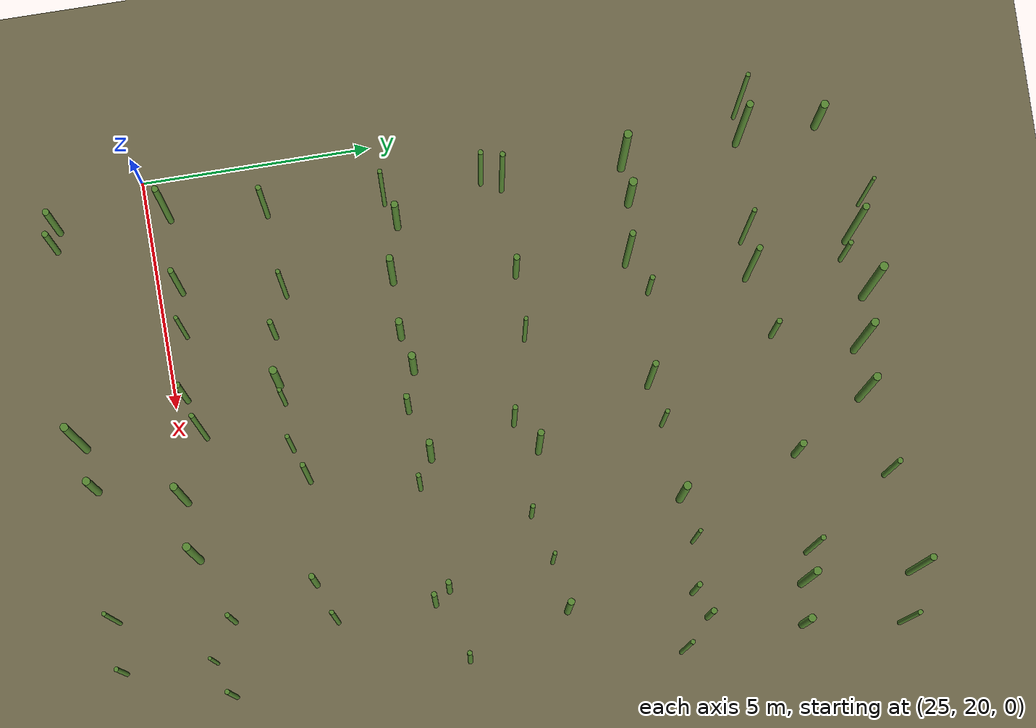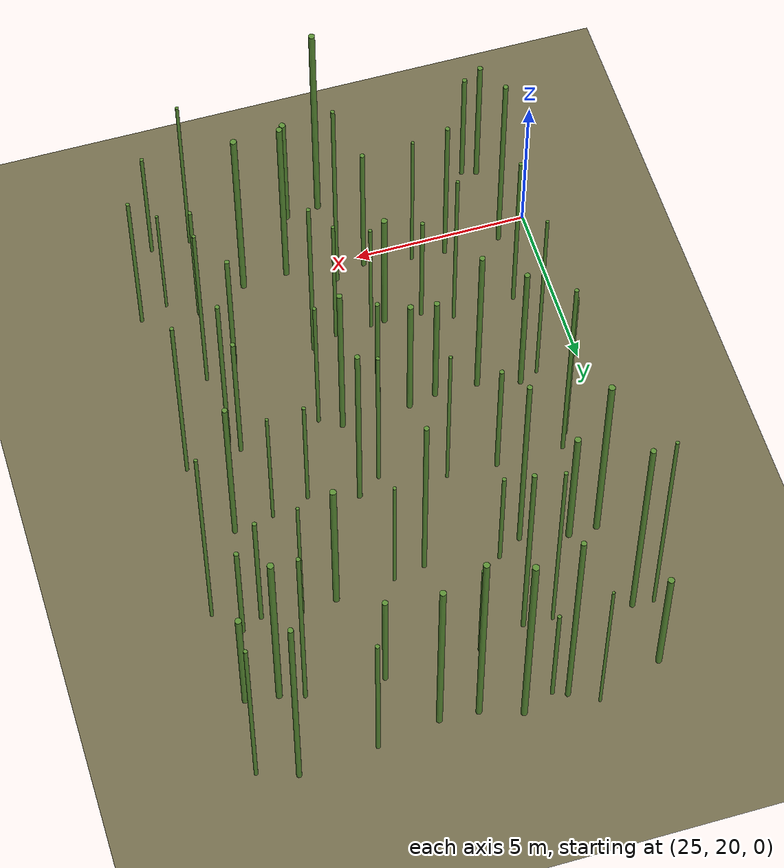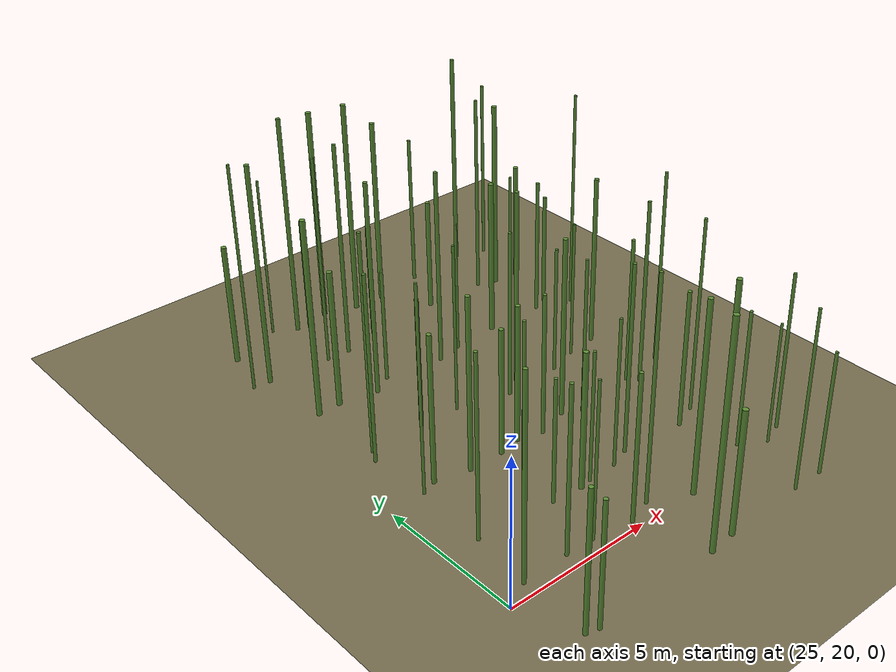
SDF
<sdf version="1.9">
 <world name="bamboo_field">
  <model name="ground_plane">
   <static>true</static>
   <link name="link">
    <collision name="collision">
     <geometry><plane><normal>0 0 1</normal><size>80.0 80.0</size></plane></geometry>
    </collision>
    <visual name="visual">
     <geometry><plane><normal>0 0 1</normal><size>80.0 80.0</size></plane></geometry>
     <material><diffuse>0.45 0.42 0.30 1</diffuse></material>
    </visual>
   </link>
  </model>
  <model name="bamboo_1530">
   <static>true</static>
   <pose>25.80255290980371 18.064616876325616 2.4070792203134177 0 0 0</pose>
   <link name="link">
    <collision name="collision">
     <geometry>
      <cylinder><radius>0.07343291248984862</radius><length>4.814158440626835</length></cylinder>
     </geometry>
    </collision>
    <visual name="visual">
     <geometry>
      <cylinder><radius>0.07343291248984862</radius><length>4.814158440626835</length></cylinder>
     </geometry>
     <material><diffuse>0.35 0.55 0.20 1</diffuse><specular>0.1 0.1 0.1 1</specular></material>
    </visual>
   </link>
  </model>
  <model name="bamboo_1531">
   <static>true</static>
   <pose>26.209084166904212 17.950297149253164 2.1439302316414013 0 0 0</pose>
   <link name="link">
    <collision name="collision">
     <geometry>
      <cylinder><radius>0.06732904213089166</radius><length>4.287860463282803</length></cylinder>
     </geometry>
    </collision>
    <visual name="visual">
     <geometry>
      <cylinder><radius>0.06732904213089166</radius><length>4.287860463282803</length></cylinder>
     </geometry>
     <material><diffuse>0.35 0.55 0.20 1</diffuse><specular>0.1 0.1 0.1 1</specular></material>
    </visual>
   </link>
  </model>
  <model name="bamboo_1535">
   <static>true</static>
   <pose>30.574648962778557 17.93160448802821 3.8445466582201195 0 0 0</pose>
   <link name="link">
    <collision name="collision">
     <geometry>
      <cylinder><radius>0.08703087593983727</radius><length>7.689093316440239</length></cylinder>
     </geometry>
    </collision>
    <visual name="visual">
     <geometry>
      <cylinder><radius>0.08703087593983727</radius><length>7.689093316440239</length></cylinder>
     </geometry>
     <material><diffuse>0.35 0.55 0.20 1</diffuse><specular>0.1 0.1 0.1 1</specular></material>
    </visual>
   </link>
  </model>
  <model name="bamboo_1536">
   <static>true</static>
   <pose>31.528611909049392 18.036549819928762 2.1495542456868857 0 0 0</pose>
   <link name="link">
    <collision name="collision">
     <geometry>
      <cylinder><radius>0.08840574088993258</radius><length>4.299108491373771</length></cylinder>
     </geometry>
    </collision>
    <visual name="visual">
     <geometry>
      <cylinder><radius>0.08840574088993258</radius><length>4.299108491373771</length></cylinder>
     </geometry>
     <material><diffuse>0.35 0.55 0.20 1</diffuse><specular>0.1 0.1 0.1 1</specular></material>
    </visual>
   </link>
  </model>
  <model name="bamboo_1539">
   <static>true</static>
   <pose>34.434505266417425 18.08623515186725 3.0941746952647327 0 0 0</pose>
   <link name="link">
    <collision name="collision">
     <geometry>
      <cylinder><radius>0.04696443140664447</radius><length>6.188349390529465</length></cylinder>
     </geometry>
    </collision>
    <visual name="visual">
     <geometry>
      <cylinder><radius>0.04696443140664447</radius><length>6.188349390529465</length></cylinder>
     </geometry>
     <material><diffuse>0.35 0.55 0.20 1</diffuse><specular>0.1 0.1 0.1 1</specular></material>
    </visual>
   </link>
  </model>
  <model name="bamboo_1540">
   <static>true</static>
   <pose>35.5497271663806 18.072339874164886 2.145823803628416 0 0 0</pose>
   <link name="link">
    <collision name="collision">
     <geometry>
      <cylinder><radius>0.05178086008636471</radius><length>4.291647607256832</length></cylinder>
     </geometry>
    </collision>
    <visual name="visual">
     <geometry>
      <cylinder><radius>0.05178086008636471</radius><length>4.291647607256832</length></cylinder>
     </geometry>
     <material><diffuse>0.35 0.55 0.20 1</diffuse><specular>0.1 0.1 0.1 1</specular></material>
    </visual>
   </link>
  </model>
  <model name="bamboo_1602">
   <static>true</static>
   <pose>25.90117536795071 20.492464840148497 3.464178837013612 0 0 0</pose>
   <link name="link">
    <collision name="collision">
     <geometry>
      <cylinder><radius>0.06855825812611824</radius><length>6.928357674027224</length></cylinder>
     </geometry>
    </collision>
    <visual name="visual">
     <geometry>
      <cylinder><radius>0.06855825812611824</radius><length>6.928357674027224</length></cylinder>
     </geometry>
     <material><diffuse>0.35 0.55 0.20 1</diffuse><specular>0.1 0.1 0.1 1</specular></material>
    </visual>
   </link>
  </model>
  <model name="bamboo_1603">
   <static>true</static>
   <pose>27.52119472640201 20.515890295376572 2.864531896907919 0 0 0</pose>
   <link name="link">
    <collision name="collision">
     <geometry>
      <cylinder><radius>0.06222025315794339</radius><length>5.729063793815838</length></cylinder>
     </geometry>
    </collision>
    <visual name="visual">
     <geometry>
      <cylinder><radius>0.06222025315794339</radius><length>5.729063793815838</length></cylinder>
     </geometry>
     <material><diffuse>0.35 0.55 0.20 1</diffuse><specular>0.1 0.1 0.1 1</specular></material>
    </visual>
   </link>
  </model>
  <model name="bamboo_1604">
   <static>true</static>
   <pose>28.48963300954424 20.46606254803113 2.7074423254078788 0 0 0</pose>
   <link name="link">
    <collision name="collision">
     <geometry>
      <cylinder><radius>0.045823132011458115</radius><length>5.4148846508157575</length></cylinder>
     </geometry>
    </collision>
    <visual name="visual">
     <geometry>
      <cylinder><radius>0.045823132011458115</radius><length>5.4148846508157575</length></cylinder>
     </geometry>
     <material><diffuse>0.35 0.55 0.20 1</diffuse><specular>0.1 0.1 0.1 1</specular></material>
    </visual>
   </link>
  </model>
  <model name="bamboo_1605">
   <static>true</static>
   <pose>29.866667449611732 20.269729248563774 2.552216059766174 0 0 0</pose>
   <link name="link">
    <collision name="collision">
     <geometry>
      <cylinder><radius>0.06535300863360508</radius><length>5.104432119532348</length></cylinder>
     </geometry>
    </collision>
    <visual name="visual">
     <geometry>
      <cylinder><radius>0.06535300863360508</radius><length>5.104432119532348</length></cylinder>
     </geometry>
     <material><diffuse>0.35 0.55 0.20 1</diffuse><specular>0.1 0.1 0.1 1</specular></material>
    </visual>
   </link>
  </model>
  <model name="bamboo_1606">
   <static>true</static>
   <pose>30.739413255479324 20.563395969871376 3.8494599616282708 0 0 0</pose>
   <link name="link">
    <collision name="collision">
     <geometry>
      <cylinder><radius>0.05574049625257868</radius><length>7.6989199232565415</length></cylinder>
     </geometry>
    </collision>
    <visual name="visual">
     <geometry>
      <cylinder><radius>0.05574049625257868</radius><length>7.6989199232565415</length></cylinder>
     </geometry>
     <material><diffuse>0.35 0.55 0.20 1</diffuse><specular>0.1 0.1 0.1 1</specular></material>
    </visual>
   </link>
  </model>
  <model name="bamboo_1607">
   <static>true</static>
   <pose>32.06802935063829 19.9356836997818 3.3222608542089915 0 0 0</pose>
   <link name="link">
    <collision name="collision">
     <geometry>
      <cylinder><radius>0.08207155203751113</radius><length>6.644521708417983</length></cylinder>
     </geometry>
    </collision>
    <visual name="visual">
     <geometry>
      <cylinder><radius>0.08207155203751113</radius><length>6.644521708417983</length></cylinder>
     </geometry>
     <material><diffuse>0.35 0.55 0.20 1</diffuse><specular>0.1 0.1 0.1 1</specular></material>
    </visual>
   </link>
  </model>
  <model name="bamboo_1608">
   <static>true</static>
   <pose>33.34797684219675 20.016741543904505 3.3466952621292814 0 0 0</pose>
   <link name="link">
    <collision name="collision">
     <geometry>
      <cylinder><radius>0.08715811841942725</radius><length>6.693390524258563</length></cylinder>
     </geometry>
    </collision>
    <visual name="visual">
     <geometry>
      <cylinder><radius>0.08715811841942725</radius><length>6.693390524258563</length></cylinder>
     </geometry>
     <material><diffuse>0.35 0.55 0.20 1</diffuse><specular>0.1 0.1 0.1 1</specular></material>
    </visual>
   </link>
  </model>
  <model name="bamboo_1609">
   <static>true</static>
   <pose>34.8009289135346 20.576321300181256 2.3971459364112127 0 0 0</pose>
   <link name="link">
    <collision name="collision">
     <geometry>
      <cylinder><radius>0.054129983682852954</radius><length>4.794291872822425</length></cylinder>
     </geometry>
    </collision>
    <visual name="visual">
     <geometry>
      <cylinder><radius>0.054129983682852954</radius><length>4.794291872822425</length></cylinder>
     </geometry>
     <material><diffuse>0.35 0.55 0.20 1</diffuse><specular>0.1 0.1 0.1 1</specular></material>
    </visual>
   </link>
  </model>
  <model name="bamboo_1610">
   <static>true</static>
   <pose>35.62110288157455 20.056721249549934 2.134522534768151 0 0 0</pose>
   <link name="link">
    <collision name="collision">
     <geometry>
      <cylinder><radius>0.04015988552358701</radius><length>4.269045069536302</length></cylinder>
     </geometry>
    </collision>
    <visual name="visual">
     <geometry>
      <cylinder><radius>0.04015988552358701</radius><length>4.269045069536302</length></cylinder>
     </geometry>
     <material><diffuse>0.35 0.55 0.20 1</diffuse><specular>0.1 0.1 0.1 1</specular></material>
    </visual>
   </link>
  </model>
  <model name="bamboo_1611">
   <static>true</static>
   <pose>36.410662147932975 20.35713860832909 2.760580459699428 0 0 0</pose>
   <link name="link">
    <collision name="collision">
     <geometry>
      <cylinder><radius>0.05315369070074641</radius><length>5.521160919398856</length></cylinder>
     </geometry>
    </collision>
    <visual name="visual">
     <geometry>
      <cylinder><radius>0.05315369070074641</radius><length>5.521160919398856</length></cylinder>
     </geometry>
     <material><diffuse>0.35 0.55 0.20 1</diffuse><specular>0.1 0.1 0.1 1</specular></material>
    </visual>
   </link>
  </model>
  <model name="bamboo_1672">
   <static>true</static>
   <pose>26.131453438843693 22.60414671741431 3.1363465314523222 0 0 0</pose>
   <link name="link">
    <collision name="collision">
     <geometry>
      <cylinder><radius>0.05707262451434592</radius><length>6.2726930629046445</length></cylinder>
     </geometry>
    </collision>
    <visual name="visual">
     <geometry>
      <cylinder><radius>0.05707262451434592</radius><length>6.2726930629046445</length></cylinder>
     </geometry>
     <material><diffuse>0.35 0.55 0.20 1</diffuse><specular>0.1 0.1 0.1 1</specular></material>
    </visual>
   </link>
  </model>
  <model name="bamboo_1673">
   <static>true</static>
   <pose>27.941511662762323 22.74452001346164 3.1822970602903506 0 0 0</pose>
   <link name="link">
    <collision name="collision">
     <geometry>
      <cylinder><radius>0.04928294446971315</radius><length>6.364594120580701</length></cylinder>
     </geometry>
    </collision>
    <visual name="visual">
     <geometry>
      <cylinder><radius>0.04928294446971315</radius><length>6.364594120580701</length></cylinder>
     </geometry>
     <material><diffuse>0.35 0.55 0.20 1</diffuse><specular>0.1 0.1 0.1 1</specular></material>
    </visual>
   </link>
  </model>
  <model name="bamboo_1674">
   <static>true</static>
   <pose>28.787964153377917 22.38052669803994 2.162549866396165 0 0 0</pose>
   <link name="link">
    <collision name="collision">
     <geometry>
      <cylinder><radius>0.058726477943490854</radius><length>4.32509973279233</length></cylinder>
     </geometry>
    </collision>
    <visual name="visual">
     <geometry>
      <cylinder><radius>0.058726477943490854</radius><length>4.32509973279233</length></cylinder>
     </geometry>
     <material><diffuse>0.35 0.55 0.20 1</diffuse><specular>0.1 0.1 0.1 1</specular></material>
    </visual>
   </link>
  </model>
  <model name="bamboo_1675">
   <static>true</static>
   <pose>29.844976526801254 22.300728585989447 2.3821721188337865 0 0 0</pose>
   <link name="link">
    <collision name="collision">
     <geometry>
      <cylinder><radius>0.08507395992598903</radius><length>4.764344237667573</length></cylinder>
     </geometry>
    </collision>
    <visual name="visual">
     <geometry>
      <cylinder><radius>0.08507395992598903</radius><length>4.764344237667573</length></cylinder>
     </geometry>
     <material><diffuse>0.35 0.55 0.20 1</diffuse><specular>0.1 0.1 0.1 1</specular></material>
    </visual>
   </link>
  </model>
  <model name="bamboo_1676">
   <static>true</static>
   <pose>30.258106554042026 22.365986481484086 2.2808521474158754 0 0 0</pose>
   <link name="link">
    <collision name="collision">
     <geometry>
      <cylinder><radius>0.04890020179709918</radius><length>4.561704294831751</length></cylinder>
     </geometry>
    </collision>
    <visual name="visual">
     <geometry>
      <cylinder><radius>0.04890020179709918</radius><length>4.561704294831751</length></cylinder>
     </geometry>
     <material><diffuse>0.35 0.55 0.20 1</diffuse><specular>0.1 0.1 0.1 1</specular></material>
    </visual>
   </link>
  </model>
  <model name="bamboo_1677">
   <static>true</static>
   <pose>31.300816696826224 22.39299581575024 2.5898646899961544 0 0 0</pose>
   <link name="link">
    <collision name="collision">
     <geometry>
      <cylinder><radius>0.048855604372649714</radius><length>5.179729379992309</length></cylinder>
     </geometry>
    </collision>
    <visual name="visual">
     <geometry>
      <cylinder><radius>0.048855604372649714</radius><length>5.179729379992309</length></cylinder>
     </geometry>
     <material><diffuse>0.35 0.55 0.20 1</diffuse><specular>0.1 0.1 0.1 1</specular></material>
    </visual>
   </link>
  </model>
  <model name="bamboo_1678">
   <static>true</static>
   <pose>32.02325145011748 22.649532700477117 3.283651821658652 0 0 0</pose>
   <link name="link">
    <collision name="collision">
     <geometry>
      <cylinder><radius>0.057442959834773294</radius><length>6.567303643317304</length></cylinder>
     </geometry>
    </collision>
    <visual name="visual">
     <geometry>
      <cylinder><radius>0.057442959834773294</radius><length>6.567303643317304</length></cylinder>
     </geometry>
     <material><diffuse>0.35 0.55 0.20 1</diffuse><specular>0.1 0.1 0.1 1</specular></material>
    </visual>
   </link>
  </model>
  <model name="bamboo_1679">
   <static>true</static>
   <pose>34.266593329107764 22.450659286908962 2.4213255940937346 0 0 0</pose>
   <link name="link">
    <collision name="collision">
     <geometry>
      <cylinder><radius>0.06689743919995103</radius><length>4.842651188187469</length></cylinder>
     </geometry>
    </collision>
    <visual name="visual">
     <geometry>
      <cylinder><radius>0.06689743919995103</radius><length>4.842651188187469</length></cylinder>
     </geometry>
     <material><diffuse>0.35 0.55 0.20 1</diffuse><specular>0.1 0.1 0.1 1</specular></material>
    </visual>
   </link>
  </model>
  <model name="bamboo_1680">
   <static>true</static>
   <pose>35.15206110766558 22.788714593343492 3.399307652838386 0 0 0</pose>
   <link name="link">
    <collision name="collision">
     <geometry>
      <cylinder><radius>0.050372347884692685</radius><length>6.798615305676772</length></cylinder>
     </geometry>
    </collision>
    <visual name="visual">
     <geometry>
      <cylinder><radius>0.050372347884692685</radius><length>6.798615305676772</length></cylinder>
     </geometry>
     <material><diffuse>0.35 0.55 0.20 1</diffuse><specular>0.1 0.1 0.1 1</specular></material>
    </visual>
   </link>
  </model>
  <model name="bamboo_1741">
   <static>true</static>
   <pose>26.269672745674708 25.166761183563388 3.553193056687369 0 0 0</pose>
   <link name="link">
    <collision name="collision">
     <geometry>
      <cylinder><radius>0.04604909871361958</radius><length>7.106386113374738</length></cylinder>
     </geometry>
    </collision>
    <visual name="visual">
     <geometry>
      <cylinder><radius>0.04604909871361958</radius><length>7.106386113374738</length></cylinder>
     </geometry>
     <material><diffuse>0.35 0.55 0.20 1</diffuse><specular>0.1 0.1 0.1 1</specular></material>
    </visual>
   </link>
  </model>
  <model name="bamboo_1742">
   <static>true</static>
   <pose>26.80507597394853 25.368462645886385 2.585926142508721 0 0 0</pose>
   <link name="link">
    <collision name="collision">
     <geometry><cylinder><radius>0.076301587544302</radius><length>5.171852285017442</length></cylinder></geometry>
    </collision>
    <visual name="visual">
     <geometry><cylinder><radius>0.076301587544302</radius><length>5.171852285017442</length></cylinder></geometry>
     <material><diffuse>0.35 0.55 0.20 1</diffuse><specular>0.1 0.1 0.1 1</specular></material>
    </visual>
   </link>
  </model>
  <model name="bamboo_1743">
   <static>true</static>
   <pose>27.988443728051617 25.092853591794746 3.02311939938766 0 0 0</pose>
   <link name="link">
    <collision name="collision">
     <geometry>
      <cylinder><radius>0.07583123122430961</radius><length>6.04623879877532</length></cylinder>
     </geometry>
    </collision>
    <visual name="visual">
     <geometry>
      <cylinder><radius>0.07583123122430961</radius><length>6.04623879877532</length></cylinder>
     </geometry>
     <material><diffuse>0.35 0.55 0.20 1</diffuse><specular>0.1 0.1 0.1 1</specular></material>
    </visual>
   </link>
  </model>
  <model name="bamboo_1744">
   <static>true</static>
   <pose>29.206592669547025 25.081866753367407 2.223567466765556 0 0 0</pose>
   <link name="link">
    <collision name="collision">
     <geometry>
      <cylinder><radius>0.07767889283285236</radius><length>4.447134933531112</length></cylinder>
     </geometry>
    </collision>
    <visual name="visual">
     <geometry>
      <cylinder><radius>0.07767889283285236</radius><length>4.447134933531112</length></cylinder>
     </geometry>
     <material><diffuse>0.35 0.55 0.20 1</diffuse><specular>0.1 0.1 0.1 1</specular></material>
    </visual>
   </link>
  </model>
  <model name="bamboo_1745">
   <static>true</static>
   <pose>29.992247085715302 25.242266515357308 2.4201699683741884 0 0 0</pose>
   <link name="link">
    <collision name="collision">
     <geometry>
      <cylinder><radius>0.07977765496171677</radius><length>4.840339936748377</length></cylinder>
     </geometry>
    </collision>
    <visual name="visual">
     <geometry>
      <cylinder><radius>0.07977765496171677</radius><length>4.840339936748377</length></cylinder>
     </geometry>
     <material><diffuse>0.35 0.55 0.20 1</diffuse><specular>0.1 0.1 0.1 1</specular></material>
    </visual>
   </link>
  </model>
  <model name="bamboo_1746">
   <static>true</static>
   <pose>30.835886602486056 24.999546064127756 2.489456888392278 0 0 0</pose>
   <link name="link">
    <collision name="collision">
     <geometry>
      <cylinder><radius>0.06457884652633311</radius><length>4.978913776784556</length></cylinder>
     </geometry>
    </collision>
    <visual name="visual">
     <geometry>
      <cylinder><radius>0.06457884652633311</radius><length>4.978913776784556</length></cylinder>
     </geometry>
     <material><diffuse>0.35 0.55 0.20 1</diffuse><specular>0.1 0.1 0.1 1</specular></material>
    </visual>
   </link>
  </model>
  <model name="bamboo_1747">
   <static>true</static>
   <pose>31.9478554320998 25.325767531798395 3.136462379623934 0 0 0</pose>
   <link name="link">
    <collision name="collision">
     <geometry>
      <cylinder><radius>0.07497808361721103</radius><length>6.272924759247868</length></cylinder>
     </geometry>
    </collision>
    <visual name="visual">
     <geometry>
      <cylinder><radius>0.07497808361721103</radius><length>6.272924759247868</length></cylinder>
     </geometry>
     <material><diffuse>0.35 0.55 0.20 1</diffuse><specular>0.1 0.1 0.1 1</specular></material>
    </visual>
   </link>
  </model>
  <model name="bamboo_1748">
   <static>true</static>
   <pose>32.54487229550068 24.996694423934798 2.7417022371819533 0 0 0</pose>
   <link name="link">
    <collision name="collision">
     <geometry>
      <cylinder><radius>0.0510510769785086</radius><length>5.4834044743639065</length></cylinder>
     </geometry>
    </collision>
    <visual name="visual">
     <geometry>
      <cylinder><radius>0.0510510769785086</radius><length>5.4834044743639065</length></cylinder>
     </geometry>
     <material><diffuse>0.35 0.55 0.20 1</diffuse><specular>0.1 0.1 0.1 1</specular></material>
    </visual>
   </link>
  </model>
  <model name="bamboo_1749">
   <static>true</static>
   <pose>34.84305314365368 25.279399376855203 2.589759232915063 0 0 0</pose>
   <link name="link">
    <collision name="collision">
     <geometry>
      <cylinder><radius>0.061993117657780164</radius><length>5.179518465830126</length></cylinder>
     </geometry>
    </collision>
    <visual name="visual">
     <geometry>
      <cylinder><radius>0.061993117657780164</radius><length>5.179518465830126</length></cylinder>
     </geometry>
     <material><diffuse>0.35 0.55 0.20 1</diffuse><specular>0.1 0.1 0.1 1</specular></material>
    </visual>
   </link>
  </model>
  <model name="bamboo_1750">
   <static>true</static>
   <pose>35.10065367668448 24.941005045804346 3.273524660288066 0 0 0</pose>
   <link name="link">
    <collision name="collision">
     <geometry>
      <cylinder><radius>0.05921133371342188</radius><length>6.547049320576132</length></cylinder>
     </geometry>
    </collision>
    <visual name="visual">
     <geometry>
      <cylinder><radius>0.05921133371342188</radius><length>6.547049320576132</length></cylinder>
     </geometry>
     <material><diffuse>0.35 0.55 0.20 1</diffuse><specular>0.1 0.1 0.1 1</specular></material>
    </visual>
   </link>
  </model>
  <model name="bamboo_1751">
   <static>true</static>
   <pose>36.42405307719336 25.490123880191938 3.4422787354676654 0 0 0</pose>
   <link name="link">
    <collision name="collision">
     <geometry>
      <cylinder><radius>0.05297105862355299</radius><length>6.884557470935331</length></cylinder>
     </geometry>
    </collision>
    <visual name="visual">
     <geometry>
      <cylinder><radius>0.05297105862355299</radius><length>6.884557470935331</length></cylinder>
     </geometry>
     <material><diffuse>0.35 0.55 0.20 1</diffuse><specular>0.1 0.1 0.1 1</specular></material>
    </visual>
   </link>
  </model>
  <model name="bamboo_1813">
   <static>true</static>
   <pose>26.13766004155995 27.311722094720015 3.250624975162508 0 0 0</pose>
   <link name="link">
    <collision name="collision">
     <geometry>
      <cylinder><radius>0.055303240866830305</radius><length>6.501249950325016</length></cylinder>
     </geometry>
    </collision>
    <visual name="visual">
     <geometry>
      <cylinder><radius>0.055303240866830305</radius><length>6.501249950325016</length></cylinder>
     </geometry>
     <material><diffuse>0.35 0.55 0.20 1</diffuse><specular>0.1 0.1 0.1 1</specular></material>
    </visual>
   </link>
  </model>
  <model name="bamboo_1814">
   <static>true</static>
   <pose>26.353758479292853 27.736514890092764 3.7776409010663974 0 0 0</pose>
   <link name="link">
    <collision name="collision">
     <geometry>
      <cylinder><radius>0.056579102362877456</radius><length>7.555281802132795</length></cylinder>
     </geometry>
    </collision>
    <visual name="visual">
     <geometry>
      <cylinder><radius>0.056579102362877456</radius><length>7.555281802132795</length></cylinder>
     </geometry>
     <material><diffuse>0.35 0.55 0.20 1</diffuse><specular>0.1 0.1 0.1 1</specular></material>
    </visual>
   </link>
  </model>
  <model name="bamboo_1815">
   <static>true</static>
   <pose>28.25650494358752 27.754127239743408 2.3163451567309385 0 0 0</pose>
   <link name="link">
    <collision name="collision">
     <geometry>
      <cylinder><radius>0.06626023000841597</radius><length>4.632690313461877</length></cylinder>
     </geometry>
    </collision>
    <visual name="visual">
     <geometry>
      <cylinder><radius>0.06626023000841597</radius><length>4.632690313461877</length></cylinder>
     </geometry>
     <material><diffuse>0.35 0.55 0.20 1</diffuse><specular>0.1 0.1 0.1 1</specular></material>
    </visual>
   </link>
  </model>
  <model name="bamboo_1816">
   <static>true</static>
   <pose>29.671255731310882 27.725393451855197 2.9513787398402886 0 0 0</pose>
   <link name="link">
    <collision name="collision">
     <geometry>
      <cylinder><radius>0.045620529490981394</radius><length>5.902757479680577</length></cylinder>
     </geometry>
    </collision>
    <visual name="visual">
     <geometry>
      <cylinder><radius>0.045620529490981394</radius><length>5.902757479680577</length></cylinder>
     </geometry>
     <material><diffuse>0.35 0.55 0.20 1</diffuse><specular>0.1 0.1 0.1 1</specular></material>
    </visual>
   </link>
  </model>
  <model name="bamboo_1817">
   <static>true</static>
   <pose>31.47091496402555 27.215834181095623 2.9389739617638138 0 0 0</pose>
   <link name="link">
    <collision name="collision">
     <geometry>
      <cylinder><radius>0.055571544124276735</radius><length>5.8779479235276275</length></cylinder>
     </geometry>
    </collision>
    <visual name="visual">
     <geometry>
      <cylinder><radius>0.055571544124276735</radius><length>5.8779479235276275</length></cylinder>
     </geometry>
     <material><diffuse>0.35 0.55 0.20 1</diffuse><specular>0.1 0.1 0.1 1</specular></material>
    </visual>
   </link>
  </model>
  <model name="bamboo_1818">
   <static>true</static>
   <pose>32.13589949931103 27.650198394560398 3.43263058508036 0 0 0</pose>
   <link name="link">
    <collision name="collision">
     <geometry><cylinder><radius>0.0706804786132395</radius><length>6.86526117016072</length></cylinder></geometry>
    </collision>
    <visual name="visual">
     <geometry><cylinder><radius>0.0706804786132395</radius><length>6.86526117016072</length></cylinder></geometry>
     <material><diffuse>0.35 0.55 0.20 1</diffuse><specular>0.1 0.1 0.1 1</specular></material>
    </visual>
   </link>
  </model>
  <model name="bamboo_1819">
   <static>true</static>
   <pose>33.5018363871963 27.28398144205532 2.2596152246810117 0 0 0</pose>
   <link name="link">
    <collision name="collision">
     <geometry>
      <cylinder><radius>0.050965556470578176</radius><length>4.5192304493620234</length></cylinder>
     </geometry>
    </collision>
    <visual name="visual">
     <geometry>
      <cylinder><radius>0.050965556470578176</radius><length>4.5192304493620234</length></cylinder>
     </geometry>
     <material><diffuse>0.35 0.55 0.20 1</diffuse><specular>0.1 0.1 0.1 1</specular></material>
    </visual>
   </link>
  </model>
  <model name="bamboo_1820">
   <static>true</static>
   <pose>34.565883732129734 27.587653704704028 2.452446807185869 0 0 0</pose>
   <link name="link">
    <collision name="collision">
     <geometry>
      <cylinder><radius>0.04526141049332127</radius><length>4.904893614371738</length></cylinder>
     </geometry>
    </collision>
    <visual name="visual">
     <geometry>
      <cylinder><radius>0.04526141049332127</radius><length>4.904893614371738</length></cylinder>
     </geometry>
     <material><diffuse>0.35 0.55 0.20 1</diffuse><specular>0.1 0.1 0.1 1</specular></material>
    </visual>
   </link>
  </model>
  <model name="bamboo_1821">
   <static>true</static>
   <pose>35.67211228238886 27.74460314118929 3.0398338514105134 0 0 0</pose>
   <link name="link">
    <collision name="collision">
     <geometry>
      <cylinder><radius>0.07341781817033316</radius><length>6.079667702821027</length></cylinder>
     </geometry>
    </collision>
    <visual name="visual">
     <geometry>
      <cylinder><radius>0.07341781817033316</radius><length>6.079667702821027</length></cylinder>
     </geometry>
     <material><diffuse>0.35 0.55 0.20 1</diffuse><specular>0.1 0.1 0.1 1</specular></material>
    </visual>
   </link>
  </model>
  <model name="bamboo_1878">
   <static>true</static>
   <pose>26.27348398050427 30.393549868354956 3.4555210028227714 0 0 0</pose>
   <link name="link">
    <collision name="collision">
     <geometry>
      <cylinder><radius>0.08736755635460053</radius><length>6.911042005645543</length></cylinder>
     </geometry>
    </collision>
    <visual name="visual">
     <geometry>
      <cylinder><radius>0.08736755635460053</radius><length>6.911042005645543</length></cylinder>
     </geometry>
     <material><diffuse>0.35 0.55 0.20 1</diffuse><specular>0.1 0.1 0.1 1</specular></material>
    </visual>
   </link>
  </model>
  <model name="bamboo_1879">
   <static>true</static>
   <pose>27.07212078282152 30.42685998731676 2.430408279028547 0 0 0</pose>
   <link name="link">
    <collision name="collision">
     <geometry>
      <cylinder><radius>0.08931032970407829</radius><length>4.860816558057094</length></cylinder>
     </geometry>
    </collision>
    <visual name="visual">
     <geometry>
      <cylinder><radius>0.08931032970407829</radius><length>4.860816558057094</length></cylinder>
     </geometry>
     <material><diffuse>0.35 0.55 0.20 1</diffuse><specular>0.1 0.1 0.1 1</specular></material>
    </visual>
   </link>
  </model>
  <model name="bamboo_1880">
   <static>true</static>
   <pose>28.387897075726627 30.15094614490964 3.7519373969428975 0 0 0</pose>
   <link name="link">
    <collision name="collision">
     <geometry>
      <cylinder><radius>0.06849286824405801</radius><length>7.503874793885795</length></cylinder>
     </geometry>
    </collision>
    <visual name="visual">
     <geometry>
      <cylinder><radius>0.06849286824405801</radius><length>7.503874793885795</length></cylinder>
     </geometry>
     <material><diffuse>0.35 0.55 0.20 1</diffuse><specular>0.1 0.1 0.1 1</specular></material>
    </visual>
   </link>
  </model>
  <model name="bamboo_1881">
   <static>true</static>
   <pose>29.068070774868307 30.548462596623946 2.013550683422215 0 0 0</pose>
   <link name="link">
    <collision name="collision">
     <geometry>
      <cylinder><radius>0.055722929635172364</radius><length>4.02710136684443</length></cylinder>
     </geometry>
    </collision>
    <visual name="visual">
     <geometry>
      <cylinder><radius>0.055722929635172364</radius><length>4.02710136684443</length></cylinder>
     </geometry>
     <material><diffuse>0.35 0.55 0.20 1</diffuse><specular>0.1 0.1 0.1 1</specular></material>
    </visual>
   </link>
  </model>
  <model name="bamboo_1882">
   <static>true</static>
   <pose>31.088425451580896 30.22414266965961 3.4607606852234483 0 0 0</pose>
   <link name="link">
    <collision name="collision">
     <geometry>
      <cylinder><radius>0.06648859896276571</radius><length>6.9215213704468965</length></cylinder>
     </geometry>
    </collision>
    <visual name="visual">
     <geometry>
      <cylinder><radius>0.06648859896276571</radius><length>6.9215213704468965</length></cylinder>
     </geometry>
     <material><diffuse>0.35 0.55 0.20 1</diffuse><specular>0.1 0.1 0.1 1</specular></material>
    </visual>
   </link>
  </model>
  <model name="bamboo_1883">
   <static>true</static>
   <pose>31.97083111280203 30.396465532435382 2.3624761854035787 0 0 0</pose>
   <link name="link">
    <collision name="collision">
     <geometry>
      <cylinder><radius>0.04896704079052039</radius><length>4.7249523708071575</length></cylinder>
     </geometry>
    </collision>
    <visual name="visual">
     <geometry>
      <cylinder><radius>0.04896704079052039</radius><length>4.7249523708071575</length></cylinder>
     </geometry>
     <material><diffuse>0.35 0.55 0.20 1</diffuse><specular>0.1 0.1 0.1 1</specular></material>
    </visual>
   </link>
  </model>
  <model name="bamboo_1884">
   <static>true</static>
   <pose>33.62780702816594 30.53747353565548 2.7749022812383464 0 0 0</pose>
   <link name="link">
    <collision name="collision">
     <geometry>
      <cylinder><radius>0.08745149451693633</radius><length>5.549804562476693</length></cylinder>
     </geometry>
    </collision>
    <visual name="visual">
     <geometry>
      <cylinder><radius>0.08745149451693633</radius><length>5.549804562476693</length></cylinder>
     </geometry>
     <material><diffuse>0.35 0.55 0.20 1</diffuse><specular>0.1 0.1 0.1 1</specular></material>
    </visual>
   </link>
  </model>
  <model name="bamboo_1885">
   <static>true</static>
   <pose>34.59299296450705 30.66532816931702 2.710313903948828 0 0 0</pose>
   <link name="link">
    <collision name="collision">
     <geometry>
      <cylinder><radius>0.04479316499501294</radius><length>5.420627807897656</length></cylinder>
     </geometry>
    </collision>
    <visual name="visual">
     <geometry>
      <cylinder><radius>0.04479316499501294</radius><length>5.420627807897656</length></cylinder>
     </geometry>
     <material><diffuse>0.35 0.55 0.20 1</diffuse><specular>0.1 0.1 0.1 1</specular></material>
    </visual>
   </link>
  </model>
  <model name="bamboo_1886">
   <static>true</static>
   <pose>35.68772684413358 30.493088124996557 2.4532804094433884 0 0 0</pose>
   <link name="link">
    <collision name="collision">
     <geometry>
      <cylinder><radius>0.06007138773821566</radius><length>4.906560818886777</length></cylinder>
     </geometry>
    </collision>
    <visual name="visual">
     <geometry>
      <cylinder><radius>0.06007138773821566</radius><length>4.906560818886777</length></cylinder>
     </geometry>
     <material><diffuse>0.35 0.55 0.20 1</diffuse><specular>0.1 0.1 0.1 1</specular></material>
    </visual>
   </link>
  </model>
  <model name="bamboo_1887">
   <static>true</static>
   <pose>36.25798129494848 30.737390082878694 2.0408015233174153 0 0 0</pose>
   <link name="link">
    <collision name="collision">
     <geometry>
      <cylinder><radius>0.06619336368805462</radius><length>4.0816030466348305</length></cylinder>
     </geometry>
    </collision>
    <visual name="visual">
     <geometry>
      <cylinder><radius>0.06619336368805462</radius><length>4.0816030466348305</length></cylinder>
     </geometry>
     <material><diffuse>0.35 0.55 0.20 1</diffuse><specular>0.1 0.1 0.1 1</specular></material>
    </visual>
   </link>
  </model>
  <model name="bamboo_1888">
   <static>true</static>
   <pose>36.92771285335527 30.053245715145184 3.9271995124985084 0 0 0</pose>
   <link name="link">
    <collision name="collision">
     <geometry>
      <cylinder><radius>0.04842565558915171</radius><length>7.854399024997017</length></cylinder>
     </geometry>
    </collision>
    <visual name="visual">
     <geometry>
      <cylinder><radius>0.04842565558915171</radius><length>7.854399024997017</length></cylinder>
     </geometry>
     <material><diffuse>0.35 0.55 0.20 1</diffuse><specular>0.1 0.1 0.1 1</specular></material>
    </visual>
   </link>
  </model>
  <model name="bamboo_1950">
   <static>true</static>
   <pose>25.546514282298855 32.99542902758025 3.98579360447867 0 0 0</pose>
   <link name="link">
    <collision name="collision">
     <geometry>
      <cylinder><radius>0.04747429993412339</radius><length>7.97158720895734</length></cylinder>
     </geometry>
    </collision>
    <visual name="visual">
     <geometry>
      <cylinder><radius>0.04747429993412339</radius><length>7.97158720895734</length></cylinder>
     </geometry>
     <material><diffuse>0.35 0.55 0.20 1</diffuse><specular>0.1 0.1 0.1 1</specular></material>
    </visual>
   </link>
  </model>
  <model name="bamboo_1951">
   <static>true</static>
   <pose>26.135617935802046 32.949165111911135 3.89752354899909 0 0 0</pose>
   <link name="link">
    <collision name="collision">
     <geometry>
      <cylinder><radius>0.07557040907173673</radius><length>7.79504709799818</length></cylinder>
     </geometry>
    </collision>
    <visual name="visual">
     <geometry>
      <cylinder><radius>0.07557040907173673</radius><length>7.79504709799818</length></cylinder>
     </geometry>
     <material><diffuse>0.35 0.55 0.20 1</diffuse><specular>0.1 0.1 0.1 1</specular></material>
    </visual>
   </link>
  </model>
  <model name="bamboo_1952">
   <static>true</static>
   <pose>28.2880293992499 32.72336840939897 3.7025056519018973 0 0 0</pose>
   <link name="link">
    <collision name="collision">
     <geometry>
      <cylinder><radius>0.0484530079235196</radius><length>7.405011303803795</length></cylinder>
     </geometry>
    </collision>
    <visual name="visual">
     <geometry>
      <cylinder><radius>0.0484530079235196</radius><length>7.405011303803795</length></cylinder>
     </geometry>
     <material><diffuse>0.35 0.55 0.20 1</diffuse><specular>0.1 0.1 0.1 1</specular></material>
    </visual>
   </link>
  </model>
  <model name="bamboo_1953">
   <static>true</static>
   <pose>29.098193588267463 32.69435907095252 3.8116333062482166 0 0 0</pose>
   <link name="link">
    <collision name="collision">
     <geometry>
      <cylinder><radius>0.06448045250720066</radius><length>7.623266612496433</length></cylinder>
     </geometry>
    </collision>
    <visual name="visual">
     <geometry>
      <cylinder><radius>0.06448045250720066</radius><length>7.623266612496433</length></cylinder>
     </geometry>
     <material><diffuse>0.35 0.55 0.20 1</diffuse><specular>0.1 0.1 0.1 1</specular></material>
    </visual>
   </link>
  </model>
  <model name="bamboo_1954">
   <static>true</static>
   <pose>30.409438623254417 33.059031865662064 2.080911476505347 0 0 0</pose>
   <link name="link">
    <collision name="collision">
     <geometry>
      <cylinder><radius>0.06164748360869207</radius><length>4.161822953010694</length></cylinder>
     </geometry>
    </collision>
    <visual name="visual">
     <geometry>
      <cylinder><radius>0.06164748360869207</radius><length>4.161822953010694</length></cylinder>
     </geometry>
     <material><diffuse>0.35 0.55 0.20 1</diffuse><specular>0.1 0.1 0.1 1</specular></material>
    </visual>
   </link>
  </model>
  <model name="bamboo_1955">
   <static>true</static>
   <pose>33.04595418765225 33.16037069527926 2.0384243175791275 0 0 0</pose>
   <link name="link">
    <collision name="collision">
     <geometry>
      <cylinder><radius>0.07673206328364185</radius><length>4.076848635158255</length></cylinder>
     </geometry>
    </collision>
    <visual name="visual">
     <geometry>
      <cylinder><radius>0.07673206328364185</radius><length>4.076848635158255</length></cylinder>
     </geometry>
     <material><diffuse>0.35 0.55 0.20 1</diffuse><specular>0.1 0.1 0.1 1</specular></material>
    </visual>
   </link>
  </model>
  <model name="bamboo_1956">
   <static>true</static>
   <pose>35.19779141007402 33.07608056907533 3.606292061695221 0 0 0</pose>
   <link name="link">
    <collision name="collision">
     <geometry>
      <cylinder><radius>0.05678174561515223</radius><length>7.212584123390442</length></cylinder>
     </geometry>
    </collision>
    <visual name="visual">
     <geometry>
      <cylinder><radius>0.05678174561515223</radius><length>7.212584123390442</length></cylinder>
     </geometry>
     <material><diffuse>0.35 0.55 0.20 1</diffuse><specular>0.1 0.1 0.1 1</specular></material>
    </visual>
   </link>
  </model>
  <model name="bamboo_1957">
   <static>true</static>
   <pose>35.849798616770194 32.86937761475315 3.438234213912307 0 0 0</pose>
   <link name="link">
    <collision name="collision">
     <geometry>
      <cylinder><radius>0.08714531278097595</radius><length>6.876468427824614</length></cylinder>
     </geometry>
    </collision>
    <visual name="visual">
     <geometry>
      <cylinder><radius>0.08714531278097595</radius><length>6.876468427824614</length></cylinder>
     </geometry>
     <material><diffuse>0.35 0.55 0.20 1</diffuse><specular>0.1 0.1 0.1 1</specular></material>
    </visual>
   </link>
  </model>
  <model name="bamboo_1958">
   <static>true</static>
   <pose>36.73615558995356 32.750226067245855 2.169590604386854 0 0 0</pose>
   <link name="link">
    <collision name="collision">
     <geometry>
      <cylinder><radius>0.08593880574100014</radius><length>4.339181208773708</length></cylinder>
     </geometry>
    </collision>
    <visual name="visual">
     <geometry>
      <cylinder><radius>0.08593880574100014</radius><length>4.339181208773708</length></cylinder>
     </geometry>
     <material><diffuse>0.35 0.55 0.20 1</diffuse><specular>0.1 0.1 0.1 1</specular></material>
    </visual>
   </link>
  </model>
  <model name="bamboo_2018">
   <static>true</static>
   <pose>26.013659608309872 34.71998902997461 2.1553482505138266 0 0 0</pose>
   <link name="link">
    <collision name="collision">
     <geometry>
      <cylinder><radius>0.08689125874955894</radius><length>4.310696501027653</length></cylinder>
     </geometry>
    </collision>
    <visual name="visual">
     <geometry>
      <cylinder><radius>0.08689125874955894</radius><length>4.310696501027653</length></cylinder>
     </geometry>
     <material><diffuse>0.35 0.55 0.20 1</diffuse><specular>0.1 0.1 0.1 1</specular></material>
    </visual>
   </link>
  </model>
  <model name="bamboo_2019">
   <static>true</static>
   <pose>27.865664993954713 35.39264539109827 2.890121227225973 0 0 0</pose>
   <link name="link">
    <collision name="collision">
     <geometry>
      <cylinder><radius>0.040000473969968614</radius><length>5.780242454451946</length></cylinder>
     </geometry>
    </collision>
    <visual name="visual">
     <geometry>
      <cylinder><radius>0.040000473969968614</radius><length>5.780242454451946</length></cylinder>
     </geometry>
     <material><diffuse>0.35 0.55 0.20 1</diffuse><specular>0.1 0.1 0.1 1</specular></material>
    </visual>
   </link>
  </model>
  <model name="bamboo_2020">
   <static>true</static>
   <pose>28.613726841919004 34.980774189863425 3.9418803963536866 0 0 0</pose>
   <link name="link">
    <collision name="collision">
     <geometry>
      <cylinder><radius>0.07228860579087787</radius><length>7.883760792707373</length></cylinder>
     </geometry>
    </collision>
    <visual name="visual">
     <geometry>
      <cylinder><radius>0.07228860579087787</radius><length>7.883760792707373</length></cylinder>
     </geometry>
     <material><diffuse>0.35 0.55 0.20 1</diffuse><specular>0.1 0.1 0.1 1</specular></material>
    </visual>
   </link>
  </model>
  <model name="bamboo_2021">
   <static>true</static>
   <pose>28.9904793359332 34.81908617150149 2.0699855074066176 0 0 0</pose>
   <link name="link">
    <collision name="collision">
     <geometry>
      <cylinder><radius>0.05487349635751682</radius><length>4.139971014813235</length></cylinder>
     </geometry>
    </collision>
    <visual name="visual">
     <geometry>
      <cylinder><radius>0.05487349635751682</radius><length>4.139971014813235</length></cylinder>
     </geometry>
     <material><diffuse>0.35 0.55 0.20 1</diffuse><specular>0.1 0.1 0.1 1</specular></material>
    </visual>
   </link>
  </model>
  <model name="bamboo_2022">
   <static>true</static>
   <pose>29.873424348265694 35.16549636283683 3.829132127831369 0 0 0</pose>
   <link name="link">
    <collision name="collision">
     <geometry>
      <cylinder><radius>0.08916415318867442</radius><length>7.658264255662738</length></cylinder>
     </geometry>
    </collision>
    <visual name="visual">
     <geometry>
      <cylinder><radius>0.08916415318867442</radius><length>7.658264255662738</length></cylinder>
     </geometry>
     <material><diffuse>0.35 0.55 0.20 1</diffuse><specular>0.1 0.1 0.1 1</specular></material>
    </visual>
   </link>
  </model>
  <model name="bamboo_2023">
   <static>true</static>
   <pose>30.99237373354502 34.79861025029053 3.8640863519386173 0 0 0</pose>
   <link name="link">
    <collision name="collision">
     <geometry>
      <cylinder><radius>0.08401452836805695</radius><length>7.7281727038772345</length></cylinder>
     </geometry>
    </collision>
    <visual name="visual">
     <geometry>
      <cylinder><radius>0.08401452836805695</radius><length>7.7281727038772345</length></cylinder>
     </geometry>
     <material><diffuse>0.35 0.55 0.20 1</diffuse><specular>0.1 0.1 0.1 1</specular></material>
    </visual>
   </link>
  </model>
  <model name="bamboo_2024">
   <static>true</static>
   <pose>32.05128463071746 34.73559077667634 3.389837154111934 0 0 0</pose>
   <link name="link">
    <collision name="collision">
     <geometry>
      <cylinder><radius>0.08432200028739012</radius><length>6.779674308223868</length></cylinder>
     </geometry>
    </collision>
    <visual name="visual">
     <geometry>
      <cylinder><radius>0.08432200028739012</radius><length>6.779674308223868</length></cylinder>
     </geometry>
     <material><diffuse>0.35 0.55 0.20 1</diffuse><specular>0.1 0.1 0.1 1</specular></material>
    </visual>
   </link>
  </model>
  <model name="bamboo_2025">
   <static>true</static>
   <pose>33.788116128955586 35.02254077995237 2.7548500452920512 0 0 0</pose>
   <link name="link">
    <collision name="collision">
     <geometry>
      <cylinder><radius>0.059876946761466286</radius><length>5.5097000905841025</length></cylinder>
     </geometry>
    </collision>
    <visual name="visual">
     <geometry>
      <cylinder><radius>0.059876946761466286</radius><length>5.5097000905841025</length></cylinder>
     </geometry>
     <material><diffuse>0.35 0.55 0.20 1</diffuse><specular>0.1 0.1 0.1 1</specular></material>
    </visual>
   </link>
  </model>
  <model name="bamboo_2026">
   <static>true</static>
   <pose>35.967154648696095 35.216730734619034 3.918857764743761 0 0 0</pose>
   <link name="link">
    <collision name="collision">
     <geometry>
      <cylinder><radius>0.07283050137125337</radius><length>7.837715529487522</length></cylinder>
     </geometry>
    </collision>
    <visual name="visual">
     <geometry>
      <cylinder><radius>0.07283050137125337</radius><length>7.837715529487522</length></cylinder>
     </geometry>
     <material><diffuse>0.35 0.55 0.20 1</diffuse><specular>0.1 0.1 0.1 1</specular></material>
    </visual>
   </link>
  </model>
  <model name="bamboo_2027">
   <static>true</static>
   <pose>37.015472630993386 34.85144838359663 3.3424851189846163 0 0 0</pose>
   <link name="link">
    <collision name="collision">
     <geometry>
      <cylinder><radius>0.05336422190979603</radius><length>6.684970237969233</length></cylinder>
     </geometry>
    </collision>
    <visual name="visual">
     <geometry>
      <cylinder><radius>0.05336422190979603</radius><length>6.684970237969233</length></cylinder>
     </geometry>
     <material><diffuse>0.35 0.55 0.20 1</diffuse><specular>0.1 0.1 0.1 1</specular></material>
    </visual>
   </link>
  </model>
 </world>
</sdf>
